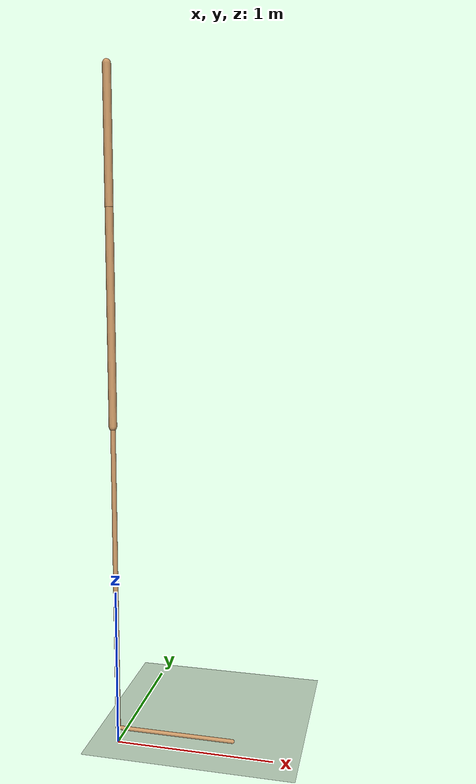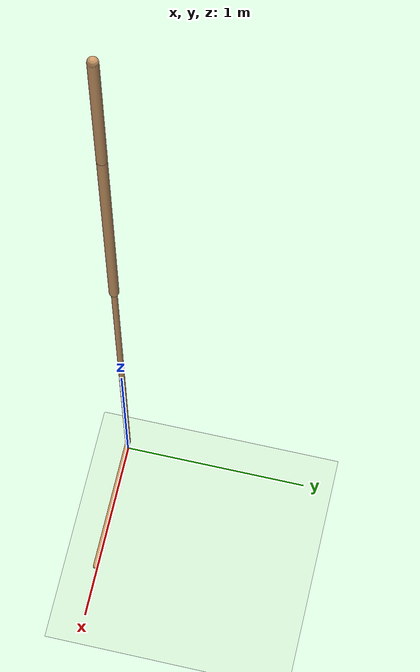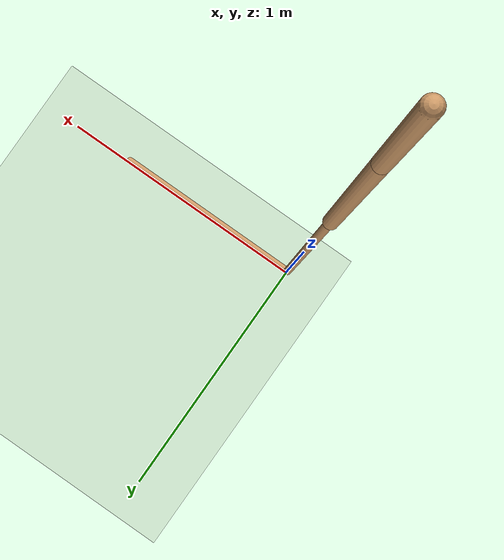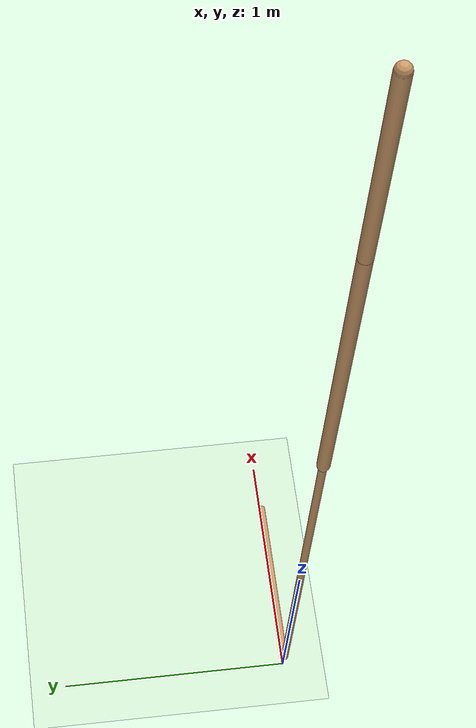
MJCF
<mujoco model="walker2d">
  <compiler angle="degree" inertiafromgeom="true" />
  <default>
    <joint armature="0.01" damping=".1" limited="true" />
    <geom conaffinity="0" condim="3" contype="1" density="1000" friction=".7 .1 .1" rgba="0.8 0.6 .4 1" />
  </default>
  <option integrator="RK4" timestep="0.002" />
  <worldbody>
    <light cutoff="100" diffuse="1 1 1" dir="-0 0 -1.3" directional="true" exponent="1" pos="0 0 1.3" specular=".1 .1 .1" />
    <geom conaffinity="1" condim="3" name="floor" pos="0 0 0" rgba="0.8 0.9 0.8 1" size="40 40 40" type="plane" material="MatPlane" />
    <body name="torso" pos="0 0 3.7336362659931184">
      <camera name="track" mode="trackcom" pos="0 -5 -1.25" xyaxes="1 0 0 0 0 1" />
      <joint armature="0" axis="1 0 0" damping="0" limited="false" name="rootx" pos="0 0 -1.25" stiffness="0" type="slide" />
      <joint armature="0" axis="0 0 1" damping="0" limited="false" name="rootz" pos="0 0 -1.25" ref="1.25" stiffness="0" type="slide" />
      <joint armature="0" axis="0 1 0" damping="0" limited="false" name="rooty" pos="0 0 0" stiffness="0" type="hinge" />
      <geom friction="0.9" name="torso_geom" size="0.02500046230852604 0.39452531933784485" type="capsule" />
      <body name="thigh" pos="0 0 -0.39452531933784485">
        <joint axis="0 -1 0" name="thigh_joint" pos="0 0 0" range="-150 0" type="hinge" />
        <site name="torso_thigh_site" pos="0 0 0" size="0.01" type="sphere" rgba="1 0 0 0.5" />
        <geom friction="0.9" pos="0 0 -0.646379828453064" name="thigh_geom" size="0.02467269077897072 0.646379828453064" type="capsule" />
        <body name="leg" pos="0 0 -2.2659353017807007">
          <joint axis="0 -1 0" name="leg_joint" pos="0 0 0.9731756448745728" range="-150 0" type="hinge" />
          <site name="thigh_leg_site" pos="0 0 0.25" size="0.01" type="sphere" rgba="1 0 0 0.5" />
          <geom friction="0.9" name="leg_geom" size="0.015359325334429741 0.9731756448745728" type="capsule" />
          <body name="foot" pos="0.7452125549316406 0 -1.0731756448745728">
            <joint axis="0 -1 0" name="foot_joint" pos="-0.7452125549316406 0 0.1" range="-45 45" type="hinge" />
            <site name="leg_foot_site" pos="-0.2 0 0.1" size="0.01" type="sphere" rgba="1 0 0 0.5" />
            <geom friction="0.9" pos="-0.3726062774658203 0 0.1" quat="0.70710678118654757 0 -0.70710678118654746 0" name="foot_geom" size="0.012829981744289398 0.3726062774658203" type="capsule" />
          </body>
        </body>
      </body>

      <body name="thigh_left" pos="0 0 -0.39452531933784485">
        <joint axis="0 -1 0" name="thigh_left_joint" pos="0 0 0" range="-150 0" type="hinge" />
        <site name="torso_thigh_left_site" pos="0 0 0" size="0.01" type="sphere" rgba="1 0 0 0.5" />
        <geom friction="0.9" name="thigh_left_geom" rgba=".7 .3 .6 1" size="0.02467269077897072 0.646379828453064" pos="0 0 -0.646379828453064" type="capsule" />
        <body name="leg_left" pos="0 0 -2.2659353017807007">
          <joint axis="0 -1 0" name="leg_left_joint" pos="0 0 0.9731756448745728" range="-150 0" type="hinge" />
          <site name="thigh_leg_left_site" pos="0 0 0.25" size="0.01" type="sphere" rgba="1 0 0 0.5" />
          <geom friction="0.9" name="leg_left_geom" rgba=".7 .3 .6 1" size="0.015359325334429741 0.9731756448745728" type="capsule" />
          <body name="foot_left" pos="0.7452125549316406 0 -1.0731756448745728">
            <joint axis="0 -1 0" name="foot_left_joint" pos="-0.7452125549316406 0 0.1" range="-45 45" type="hinge" />
            <site name="leg_foot_left_site" pos="-0.2 0 0.1" size="0.01" type="sphere" rgba="1 0 0 0.5" />
            <geom friction="1.9" name="foot_left_geom" rgba=".7 .3 .6 1" size="0.012829981744289398 0.3726062774658203" pos="-0.3726062774658203 0 0.1" type="capsule" quat="0.70710678118654757 0 -0.70710678118654746 0" />
          </body>
        </body>
      </body>
    </body>
  </worldbody>
  <actuator>

    <motor ctrllimited="true" ctrlrange="-1.0 1.0" gear="69.95170424967047" joint="thigh_joint" />
    <motor ctrllimited="true" ctrlrange="-1.0 1.0" gear="57.39519282397213" joint="leg_joint" />
    <motor ctrllimited="true" ctrlrange="-1.0 1.0" gear="17.037259700725397" joint="foot_joint" />
    <motor ctrllimited="true" ctrlrange="-1.0 1.0" gear="69.95170424967047" joint="thigh_left_joint" />
    <motor ctrllimited="true" ctrlrange="-1.0 1.0" gear="57.39519282397213" joint="leg_left_joint" />
    <motor ctrllimited="true" ctrlrange="-1.0 1.0" gear="17.037259700725397" joint="foot_left_joint" />

  </actuator>
    <asset>
        <texture type="skybox" builtin="gradient" rgb1=".4 .5 .6" rgb2="0 0 0" width="100" height="100" />
        <texture builtin="flat" height="1278" mark="cross" markrgb="1 1 1" name="texgeom" random="0.01" rgb1="0.8 0.6 0.4" rgb2="0.8 0.6 0.4" type="cube" width="127" />
        <texture builtin="checker" height="100" name="texplane" rgb1="0 0 0" rgb2="0.8 0.8 0.8" type="2d" width="100" />
        <material name="MatPlane" reflectance="0.5" shininess="1" specular="1" texrepeat="60 60" texture="texplane" />
        <material name="geom" texture="texgeom" texuniform="true" />
    </asset>

  <sensor>
    <force site="torso_thigh_site" name="torso_thigh_sensor" />
    <force site="thigh_leg_site" name="thigh_leg_sensor" />
    <force site="leg_foot_site" name="leg_foot_sensor" />
    <force site="torso_thigh_left_site" name="torso_thigh_left_sensor" />
    <force site="thigh_leg_left_site" name="thigh_leg_left_sensor" />
    <force site="leg_foot_left_site" name="leg_foot_left_sensor" />
  </sensor>
</mujoco>
